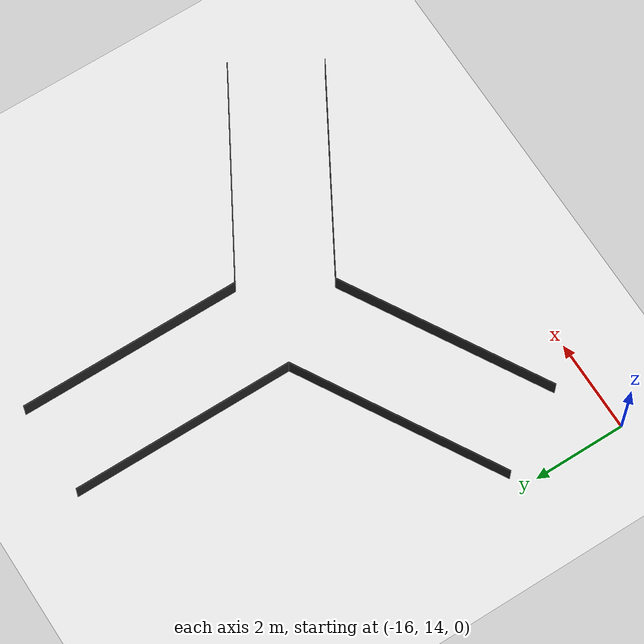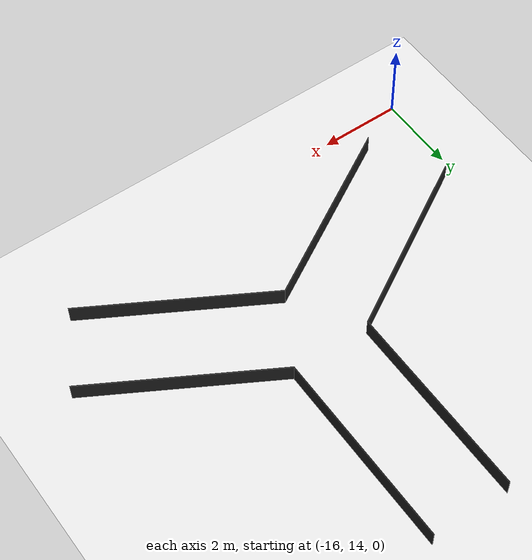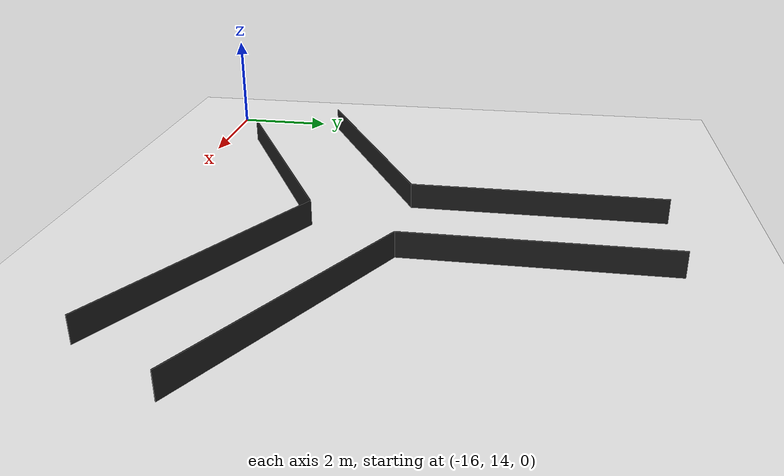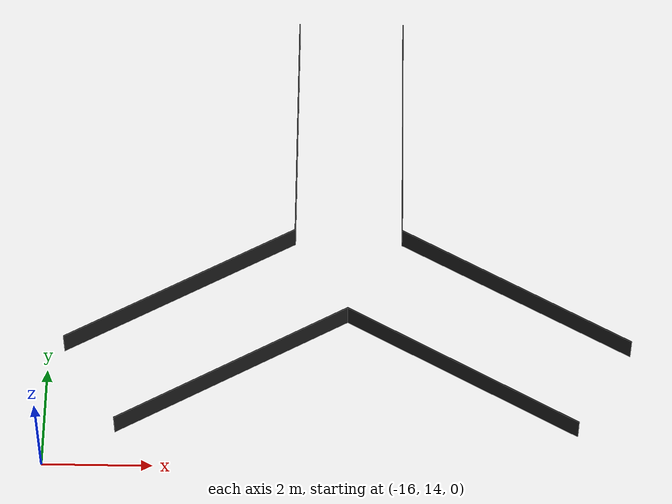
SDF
<sdf version="1.6">
 <world name="default">
  <model name="ground_plane">
   <static>1</static>
   <link name="link">
    <collision name="collision">
     <geometry><plane><normal>0 0 1</normal><size>100 100</size></plane></geometry>
     <surface><friction><ode><mu>100</mu><mu2>50</mu2></ode></friction></surface>
    </collision>
    <visual name="visual">
     <cast_shadows>0</cast_shadows>
     <geometry><plane><normal>0 0 1</normal><size>100 100</size></plane></geometry>
     <material>
      <script><uri>file://media/materials/scripts/gazebo.material</uri><name>Gazebo/White</name></script>
     </material>
    </visual>
   </link>
  </model>
  <model name="T_maze_right">
   <link name="link">
    <inertial>
     <mass>1</mass>
     <inertia>
      <ixx>0.166667</ixx>
      <ixy>0</ixy>
      <ixz>0</ixz>
      <iyy>0.166667</iyy>
      <iyz>0</iyz>
      <izz>0.166667</izz>
     </inertia>
    </inertial>
    <pose>8.67982 0.164587 0 0 -0 0</pose>
    <visual name="visual">
     <geometry><box><size>0.015 4.8453 0.5</size></box></geometry>
     <material>
      <script><name>Gazebo/FlatBlack</name><uri>file://media/materials/scripts/gazebo.material</uri></script>
      <shader type="pixel"><normal_map>__default__</normal_map></shader>
      <ambient>0.1 0.1 0.1 1</ambient>
      <diffuse>0.1 0.1 0.1 1</diffuse>
      <specular>0.01 0.01 0.01 1</specular>
      <emissive>0 0 0 1</emissive>
     </material>
    </visual>
    <visual name="ModelPreview_1::link::visual_2">
     <geometry><box><size>0.015 4.8453 0.5</size></box></geometry>
     <material>
      <script><name>Gazebo/FlatBlack</name><uri>file://media/materials/scripts/gazebo.material</uri></script>
      <shader type="pixel"><normal_map>__default__</normal_map></shader>
      <ambient>0.1 0.1 0.1 1</ambient>
      <diffuse>0.1 0.1 0.1 1</diffuse>
      <specular>0.01 0.01 0.01 1</specular>
      <emissive>0 0 0 1</emissive>
     </material>
     <pose>2 0 0 0 -0 0</pose>
    </visual>
    <collision name="collision_1">
     <pose>2 0 0 0 -0 0</pose>
     <geometry><box><size>0.015 4.8453 0.5</size></box></geometry>
     <surface>
      <friction>
       <ode><mu>1</mu><mu2>1</mu2><fdir1>0 0 0</fdir1><slip1>0</slip1><slip2>0</slip2></ode>
       <torsional>
        <coefficient>1</coefficient>
        <patch_radius>0</patch_radius>
        <surface_radius>0</surface_radius>
        <use_patch_radius>1</use_patch_radius>
        <ode><slip>0</slip></ode>
       </torsional>
      </friction>
      <bounce><restitution_coefficient>0</restitution_coefficient><threshold>1e+06</threshold></bounce>
      <contact>
       <collide_without_contact>0</collide_without_contact>
       <collide_without_contact_bitmask>1</collide_without_contact_bitmask>
       <collide_bitmask>1</collide_bitmask>
       <ode>
        <soft_cfm>0</soft_cfm>
        <soft_erp>0.2</soft_erp>
        <kp>1e+13</kp>
        <kd>1</kd>
        <max_vel>0.01</max_vel>
        <min_depth>0</min_depth>
       </ode>
       <bullet>
        <split_impulse>1</split_impulse>
        <split_impulse_penetration_threshold>-0.01</split_impulse_penetration_threshold>
        <soft_cfm>0</soft_cfm>
        <soft_erp>0.2</soft_erp>
        <kp>1e+13</kp>
        <kd>1</kd>
       </bullet>
      </contact>
     </surface>
    </collision>
    <collision name="collision">
     <geometry><box><size>0.015 4.8453 0.5</size></box></geometry>
     <surface>
      <friction>
       <ode><mu>1</mu><mu2>1</mu2><fdir1>0 0 0</fdir1><slip1>0</slip1><slip2>0</slip2></ode>
       <torsional>
        <coefficient>1</coefficient>
        <patch_radius>0</patch_radius>
        <surface_radius>0</surface_radius>
        <use_patch_radius>1</use_patch_radius>
        <ode><slip>0</slip></ode>
       </torsional>
      </friction>
      <bounce><restitution_coefficient>0</restitution_coefficient><threshold>1e+06</threshold></bounce>
      <contact>
       <collide_without_contact>0</collide_without_contact>
       <collide_without_contact_bitmask>1</collide_without_contact_bitmask>
       <collide_bitmask>1</collide_bitmask>
       <ode>
        <soft_cfm>0</soft_cfm>
        <soft_erp>0.2</soft_erp>
        <kp>1e+13</kp>
        <kd>1</kd>
        <max_vel>0.01</max_vel>
        <min_depth>0</min_depth>
       </ode>
       <bullet>
        <split_impulse>1</split_impulse>
        <split_impulse_penetration_threshold>-0.01</split_impulse_penetration_threshold>
        <soft_cfm>0</soft_cfm>
        <soft_erp>0.2</soft_erp>
        <kp>1e+13</kp>
        <kd>1</kd>
       </bullet>
      </contact>
     </surface>
    </collision>
   </link>
   <link name="link_clone_0_clone">
    <inertial>
     <mass>1</mass>
     <inertia>
      <ixx>0.166667</ixx>
      <ixy>0</ixy>
      <ixz>0</ixz>
      <iyy>0.166667</iyy>
      <iyz>0</iyz>
      <izz>0.166667</izz>
     </inertia>
    </inertial>
    <pose>12.7746 -3.46264 0 5e-06 -0 -2.0944</pose>
    <visual name="visual">
     <geometry><box><size>0.015 4.8453 0.5</size></box></geometry>
     <material>
      <script><name>Gazebo/FlatBlack</name><uri>file://media/materials/scripts/gazebo.material</uri></script>
      <shader type="pixel"><normal_map>__default__</normal_map></shader>
      <ambient>0.1 0.1 0.1 1</ambient>
      <diffuse>0.1 0.1 0.1 1</diffuse>
      <specular>0.01 0.01 0.01 1</specular>
      <emissive>0 0 0 1</emissive>
     </material>
    </visual>
    <visual name="visual_2">
     <geometry><box><size>0.015 4.8453 0.5</size></box></geometry>
     <material>
      <script><name>Gazebo/FlatBlack</name><uri>file://media/materials/scripts/gazebo.material</uri></script>
      <shader type="pixel"><normal_map>__default__</normal_map></shader>
      <ambient>0.1 0.1 0.1 1</ambient>
      <diffuse>0.1 0.1 0.1 1</diffuse>
      <specular>0.01 0.01 0.01 1</specular>
      <emissive>0 0 0 1</emissive>
     </material>
     <pose>2 0 0 0 -0 0</pose>
    </visual>
    <collision name="collision">
     <geometry><box><size>0.015 4.8453 0.5</size></box></geometry>
     <surface>
      <friction>
       <ode><mu>1</mu><mu2>1</mu2><fdir1>0 0 0</fdir1><slip1>0</slip1><slip2>0</slip2></ode>
       <torsional>
        <coefficient>1</coefficient>
        <patch_radius>0</patch_radius>
        <surface_radius>0</surface_radius>
        <use_patch_radius>1</use_patch_radius>
        <ode><slip>0</slip></ode>
       </torsional>
      </friction>
      <bounce><restitution_coefficient>0</restitution_coefficient><threshold>1e+06</threshold></bounce>
      <contact>
       <collide_without_contact>0</collide_without_contact>
       <collide_without_contact_bitmask>1</collide_without_contact_bitmask>
       <collide_bitmask>1</collide_bitmask>
       <ode>
        <soft_cfm>0</soft_cfm>
        <soft_erp>0.2</soft_erp>
        <kp>1e+13</kp>
        <kd>1</kd>
        <max_vel>0.01</max_vel>
        <min_depth>0</min_depth>
       </ode>
       <bullet>
        <split_impulse>1</split_impulse>
        <split_impulse_penetration_threshold>-0.01</split_impulse_penetration_threshold>
        <soft_cfm>0</soft_cfm>
        <soft_erp>0.2</soft_erp>
        <kp>1e+13</kp>
        <kd>1</kd>
       </bullet>
      </contact>
     </surface>
    </collision>
    <collision name="collision_1">
     <pose>2 0 0 0 -0 0</pose>
     <geometry><box><size>0.015 4.8453 0.5</size></box></geometry>
     <surface>
      <friction>
       <ode><mu>1</mu><mu2>1</mu2><fdir1>0 0 0</fdir1><slip1>0</slip1><slip2>0</slip2></ode>
       <torsional>
        <coefficient>1</coefficient>
        <patch_radius>0</patch_radius>
        <surface_radius>0</surface_radius>
        <use_patch_radius>1</use_patch_radius>
        <ode><slip>0</slip></ode>
       </torsional>
      </friction>
      <bounce><restitution_coefficient>0</restitution_coefficient><threshold>1e+06</threshold></bounce>
      <contact>
       <collide_without_contact>0</collide_without_contact>
       <collide_without_contact_bitmask>1</collide_without_contact_bitmask>
       <collide_bitmask>1</collide_bitmask>
       <ode>
        <soft_cfm>0</soft_cfm>
        <soft_erp>0.2</soft_erp>
        <kp>1e+13</kp>
        <kd>1</kd>
        <max_vel>0.01</max_vel>
        <min_depth>0</min_depth>
       </ode>
       <bullet>
        <split_impulse>1</split_impulse>
        <split_impulse_penetration_threshold>-0.01</split_impulse_penetration_threshold>
        <soft_cfm>0</soft_cfm>
        <soft_erp>0.2</soft_erp>
        <kp>1e+13</kp>
        <kd>1</kd>
       </bullet>
      </contact>
     </surface>
    </collision>
   </link>
   <link name="link_clone_clone">
    <inertial>
     <mass>1</mass>
     <inertia>
      <ixx>0.166667</ixx>
      <ixy>0</ixy>
      <ixz>0</ixz>
      <iyy>0.166667</iyy>
      <iyz>0</iyz>
      <izz>0.166667</izz>
     </inertia>
    </inertial>
    <pose>7.58495 -5.19374 0 5e-06 -0 2.0944</pose>
    <visual name="visual">
     <geometry><box><size>0.015 4.8453 0.5</size></box></geometry>
     <material>
      <script><name>Gazebo/FlatBlack</name><uri>file://media/materials/scripts/gazebo.material</uri></script>
      <shader type="pixel"><normal_map>__default__</normal_map></shader>
      <ambient>0.1 0.1 0.1 1</ambient>
      <diffuse>0.1 0.1 0.1 1</diffuse>
      <specular>0.01 0.01 0.01 1</specular>
      <emissive>0 0 0 1</emissive>
     </material>
    </visual>
    <visual name="visual_2">
     <geometry><box><size>0.015 4.8453 0.5</size></box></geometry>
     <material>
      <script><name>Gazebo/FlatBlack</name><uri>file://media/materials/scripts/gazebo.material</uri></script>
      <shader type="pixel"><normal_map>__default__</normal_map></shader>
      <ambient>0.1 0.1 0.1 1</ambient>
      <diffuse>0.1 0.1 0.1 1</diffuse>
      <specular>0.01 0.01 0.01 1</specular>
      <emissive>0 0 0 1</emissive>
     </material>
     <pose>2 0 0 0 -0 0</pose>
    </visual>
    <collision name="collision">
     <geometry><box><size>0.015 4.8453 0.5</size></box></geometry>
     <surface>
      <friction>
       <ode><mu>1</mu><mu2>1</mu2><fdir1>0 0 0</fdir1><slip1>0</slip1><slip2>0</slip2></ode>
       <torsional>
        <coefficient>1</coefficient>
        <patch_radius>0</patch_radius>
        <surface_radius>0</surface_radius>
        <use_patch_radius>1</use_patch_radius>
        <ode><slip>0</slip></ode>
       </torsional>
      </friction>
      <bounce><restitution_coefficient>0</restitution_coefficient><threshold>1e+06</threshold></bounce>
      <contact>
       <collide_without_contact>0</collide_without_contact>
       <collide_without_contact_bitmask>1</collide_without_contact_bitmask>
       <collide_bitmask>1</collide_bitmask>
       <ode>
        <soft_cfm>0</soft_cfm>
        <soft_erp>0.2</soft_erp>
        <kp>1e+13</kp>
        <kd>1</kd>
        <max_vel>0.01</max_vel>
        <min_depth>0</min_depth>
       </ode>
       <bullet>
        <split_impulse>1</split_impulse>
        <split_impulse_penetration_threshold>-0.01</split_impulse_penetration_threshold>
        <soft_cfm>0</soft_cfm>
        <soft_erp>0.2</soft_erp>
        <kp>1e+13</kp>
        <kd>1</kd>
       </bullet>
      </contact>
     </surface>
    </collision>
    <collision name="collision_1">
     <pose>2 0 0 0 -0 0</pose>
     <geometry><box><size>0.015 4.8453 0.5</size></box></geometry>
     <surface>
      <friction>
       <ode><mu>1</mu><mu2>1</mu2><fdir1>0 0 0</fdir1><slip1>0</slip1><slip2>0</slip2></ode>
       <torsional>
        <coefficient>1</coefficient>
        <patch_radius>0</patch_radius>
        <surface_radius>0</surface_radius>
        <use_patch_radius>1</use_patch_radius>
        <ode><slip>0</slip></ode>
       </torsional>
      </friction>
      <bounce><restitution_coefficient>0</restitution_coefficient><threshold>1e+06</threshold></bounce>
      <contact>
       <collide_without_contact>0</collide_without_contact>
       <collide_without_contact_bitmask>1</collide_without_contact_bitmask>
       <collide_bitmask>1</collide_bitmask>
       <ode>
        <soft_cfm>0</soft_cfm>
        <soft_erp>0.2</soft_erp>
        <kp>1e+13</kp>
        <kd>1</kd>
        <max_vel>0.01</max_vel>
        <min_depth>0</min_depth>
       </ode>
       <bullet>
        <split_impulse>1</split_impulse>
        <split_impulse_penetration_threshold>-0.01</split_impulse_penetration_threshold>
        <soft_cfm>0</soft_cfm>
        <soft_erp>0.2</soft_erp>
        <kp>1e+13</kp>
        <kd>1</kd>
       </bullet>
      </contact>
     </surface>
    </collision>
   </link>
   <static>1</static>
   <pose>-0.84158 21.1125 0.25 3.14159 -0 3.14159</pose>
  </model>
 </world>
</sdf>
